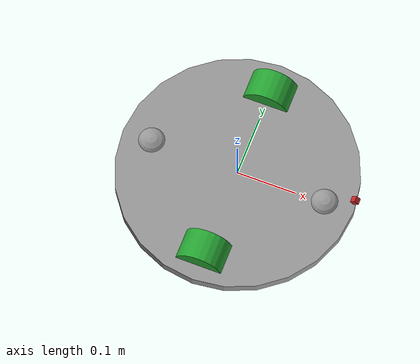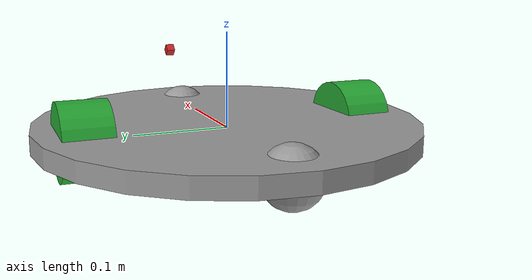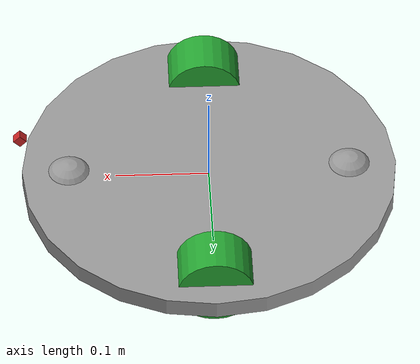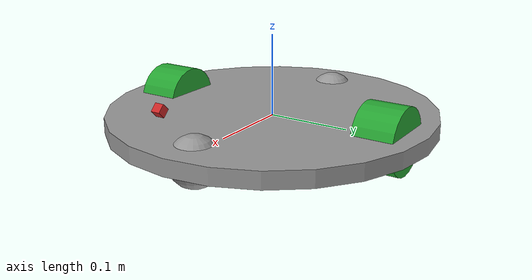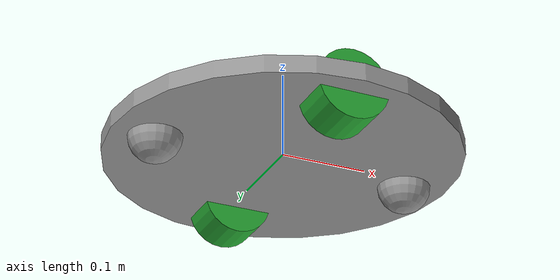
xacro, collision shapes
<?xml version='1.0'?>

<robot name="mogi_bot" xmlns:xacro="http://www.ros.org/wiki/xacro">

  <!-- Gazebo plugin -->
  <xacro:include filename="$(find line_follower_burger)/urdf/mogi_bot.gazebo" />
  <!-- RViz colors -->
  <xacro:include filename="$(find line_follower_burger)/urdf/materials.xacro" />

  <link name="base_footprint"></link>

  <joint name="base_footprint_joint" type="fixed">
    <origin xyz="0 0 0" rpy="0 0 0" />
    <parent link="base_footprint"/>
    <child link="base_link" />
  </joint>

  <!-- Robot chassis -->
  <link name='base_link'>
    <pose>0 0 0.1 0 0 0</pose>

    <inertial>
      <mass value="15.0"/>
      <origin xyz="0.0 0 0" rpy="0 0 0"/>
      <inertia
          ixx="0.1" ixy="0" ixz="0"
          iyy="0.1" iyz="0"
          izz="0.1"
      />
    </inertial>

    <collision name='collision'>
      <origin xyz="0 0 0" rpy="0 0 0"/>
      <geometry>
        <cylinder radius="0.2" length="0.02"/>
      </geometry>
    </collision>

    <visual name='base_link_visual'>
      <origin xyz="0 0 0" rpy="0 0 0"/>
      <geometry>
        <!--box size=".4 .2 .1"/-->
        <mesh filename = "package://line_follower_burger/meshes/mogi_porszi.dae" scale="0.001 0.001 0.001"/>
      </geometry>
      <material name="grey"/>
    </visual>

    <collision name='rear_caster_collision'>
      <origin xyz="-0.15 0 -0.010" rpy="0 0 0"/>
      <geometry>
        <sphere radius="0.03"/>
      </geometry>
    </collision>

    <visual name='rear_caster_visual'>
      <origin xyz="-0.15 0 -0.010" rpy="0 0 0"/>
      <geometry>
        <sphere radius="0.03"/>
      </geometry>
    </visual>

    <collision name='front_caster_collision'>
      <origin xyz="0.15 0 -0.010" rpy="0 0 0"/>
      <geometry>
        <sphere radius="0.03"/>
      </geometry>
    </collision>

    <visual name='front_caster_visual'>
      <origin xyz="0.15 0 -0.010" rpy="0 0 0"/>
      <geometry>
        <sphere radius="0.03"/>
      </geometry>
    </visual>

  </link>

  <!-- Wheels -->
  <joint type="continuous" name="left_wheel_joint">
    <origin xyz="0 0.15 0" rpy="0 0 0"/>
    <child link="left_wheel"/>
    <parent link="base_link"/>
    <axis xyz="0 1 0" rpy="0 0 0"/>
    <limit effort="10000" velocity="1000"/>
    <dynamics damping="1.0" friction="1.0"/>
  </joint>

  <link name='left_wheel'>
    <inertial>
      <mass value="5.0"/>
      <origin xyz="0 0 0" rpy="0 1.5707 1.5707"/>
      <inertia
          ixx="0.1" ixy="0" ixz="0"
          iyy="0.1" iyz="0"
          izz="0.1"
      />
    </inertial>

    <collision name='collision'>
      <origin xyz="0 0 0" rpy="0 1.5707 1.5707"/>
      <geometry>
        <cylinder radius=".04" length=".05"/>
      </geometry>
    </collision>

    <visual name='left_wheel_visual'>
      <origin xyz="0 0 0" rpy="0 1.5707 1.5707"/>
      <geometry>
        <!--cylinder radius=".1" length=".05"/-->
        <mesh filename = "package://line_follower_burger/meshes/wheel.dae" scale="0.4 0.4 0.4"/>
      </geometry>
      <material name="green"/>
    </visual>
  </link>

  <joint type="continuous" name="right_wheel_joint">
    <origin xyz="0 -0.15 0" rpy="0 0 0"/>
    <child link="right_wheel"/>
    <parent link="base_link"/>
    <axis xyz="0 1 0" rpy="0 0 0"/>
    <limit effort="10000" velocity="1000"/>
    <dynamics damping="1.0" friction="1.0"/>
  </joint>

  <link name='right_wheel'>
    <inertial>
      <mass value="5.0"/>
      <origin xyz="0 0 0" rpy="0 1.5707 1.5707"/>
      <inertia
          ixx="0.1" ixy="0" ixz="0"
          iyy="0.1" iyz="0"
          izz="0.1"
      />
    </inertial>

    <collision name='collision'>
      <origin xyz="0 0 0" rpy="0 1.5707 1.5707"/>
      <geometry>
        <cylinder radius=".04" length=".05"/>
      </geometry>
    </collision>

    <visual name='right_wheel_visual'>
      <origin xyz="0 0 0" rpy="0 1.5707 1.5707"/>
      <geometry>
        <!--cylinder radius=".1" length=".05"/-->
        <mesh filename = "package://line_follower_burger/meshes/wheel.dae" scale="0.4 0.4 0.4"/>
      </geometry>
      <material name="green"/>
    </visual>
  </link>
    <!-- Camera -->
  <joint type="fixed" name="camera_joint">
    <origin xyz="0.2 0 0.06" rpy="0 0.79 0"/>
    <child link="camera_link"/>
    <parent link="base_link"/>
    <axis xyz="0 1 0" />
  </joint>

  <link name='camera_link'>
    <pose>0 0 0 0 0 0</pose>
    <inertial>
      <mass value="0.001"/>
      <origin xyz="0 0 0" rpy="0 0 0"/>
      <inertia
          ixx="1e-6" ixy="0" ixz="0"
          iyy="1e-6" iyz="0"
          izz="1e-6"
      />
    </inertial>

    <collision name='collision'>
      <origin xyz="0 0 0" rpy="0 0 0"/>
      <geometry>
        <box size=".01 .01 .01"/>
      </geometry>
    </collision>

    <visual name='camera_link_visual'>
      <origin xyz="0 0 0" rpy="0 0 0"/>
      <geometry>
        <box size=".02 .02 .02"/>
      </geometry>
    </visual>

  </link>

  <gazebo reference="camera_link">
    <material>Gazebo/Red</material>
  </gazebo>

  <joint type="fixed" name="camera_optical_joint">
    <origin xyz="0 0 0" rpy="-1.5707 0 -1.5707"/>
    <child link="camera_link_optical"/>
    <parent link="camera_link"/>
  </joint>

  <link name="camera_link_optical">
  </link>
</robot>
